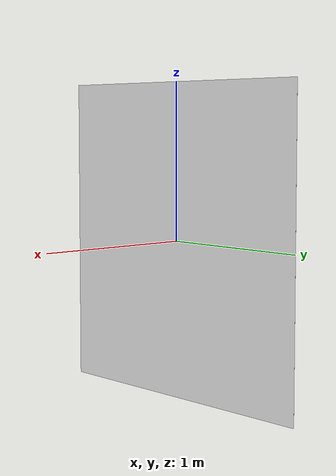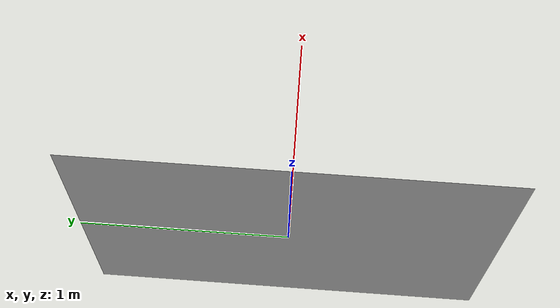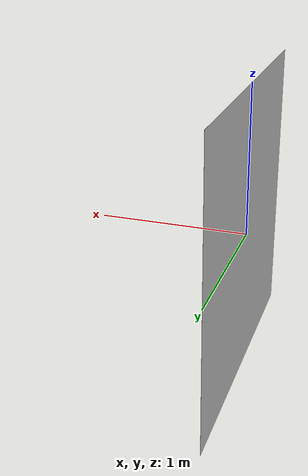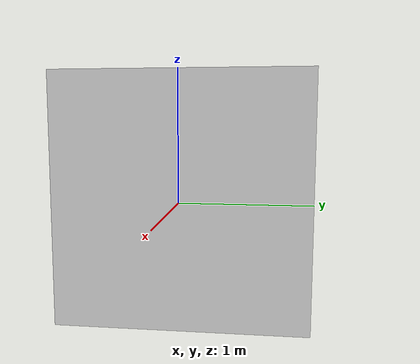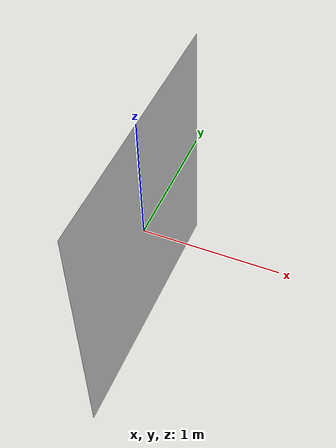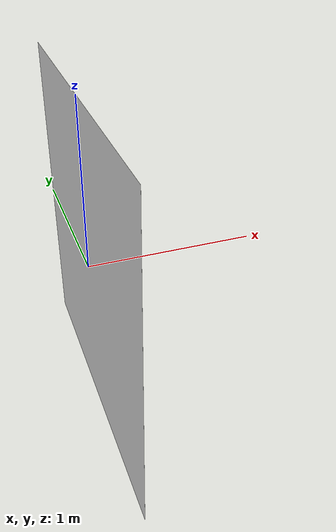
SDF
<?xml version='1.0'?>
    <sdf version='1.7'>
    <model name='aruco_marker_10'>
        <static>true</static>
        <link name='link'>
        <inertial>
            <pose>10.0 10.0 10.0 0 0 0</pose>
            <mass>0.001</mass>
            <inertia>
            <ixx>0.0</ixx>
            <ixy>0.0</ixy>
            <ixz>0.0</ixz>
            <iyy>0.0</iyy>
            <ixz>0.0</ixz>
            <izz>0.0</izz>
            </inertia>
        </inertial>
        <visual name='front_visual'>
            <pose>0.00005 0 0 0 0 0</pose>
            <geometry>
            <box>
                <size>0.0001 2.0 2.0</size>
            </box>
            </geometry>
            <material>
            <script>
                <uri>model://aruco_tag/materials/scripts</uri>
                <uri>model://aruco_tag/materials/textures</uri>
                <name>Marker</name>
            </script>
            </material>
        </visual>
        <visual name="rear_visual">
            <pose>-0.00005 0 0 0 0 0</pose>
            <geometry>
            <box>
                <size>0.0001 2.0 2.0</size>
            </box>
            </geometry>
        </visual>
        <collision name="collision">
            <pose>0 0 0 0 0 0</pose>
            <geometry>
            <box>
                <size>0.0001 2.0 2.0</size>
            </box>
            </geometry>
        </collision>
        </link>
    </model>
    </sdf>
